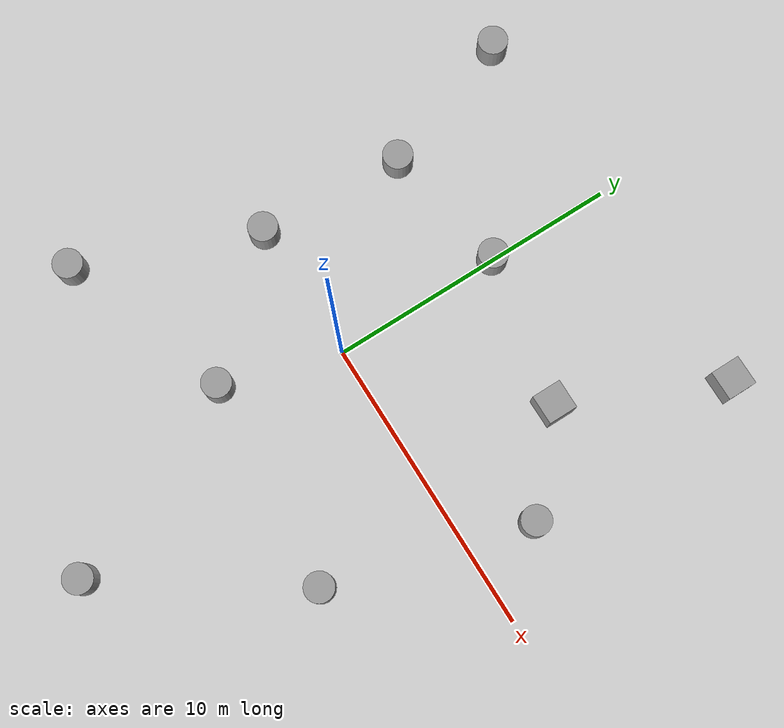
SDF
<sdf version="1.7">
 <world name="default">
  <light name="sun" type="directional">
   <pose>0 0 10 0 -0 0</pose>
   <diffuse>0.8 0.8 0.8 1</diffuse>
   <specular>0.2 0.2 0.2 1</specular>
   <attenuation>
    <range>1000</range>
    <constant>0.9</constant>
    <linear>0.01</linear>
    <quadratic>0.001</quadratic>
   </attenuation>
   <direction>-0.5 0.1 -0.9</direction>
   <spot><inner_angle>0</inner_angle><outer_angle>0</outer_angle><falloff>0</falloff></spot>
  </light>
  <model name="ground_plane">
   <static>1</static>
   <link name="link">
    <collision name="collision">
     <geometry><plane><normal>0 0 1</normal><size>100 100</size></plane></geometry>
     <surface><friction><ode><mu>100</mu><mu2>50</mu2></ode></friction></surface>
    </collision>
    <visual name="visual">
     <cast_shadows>0</cast_shadows>
     <geometry><plane><normal>0 0 1</normal><size>100 100</size></plane></geometry>
     <material>
      <script><uri>file://media/materials/scripts/gazebo.material</uri><name>Gazebo/Grey</name></script>
     </material>
    </visual>
   </link>
  </model>
  <gravity>0 0 -9.8</gravity>
  <magnetic_field>6e-06 2.3e-05 -4.2e-05</magnetic_field>
  <atmosphere type="adiabatic"/>
  <physics type="ode">
   <max_step_size>0.001</max_step_size>
   <real_time_factor>1</real_time_factor>
   <real_time_update_rate>1000</real_time_update_rate>
  </physics>
  <scene><ambient>0.4 0.4 0.4 1</ambient><background>0.7 0.7 0.7 1</background><shadows>1</shadows></scene>
  <audio><device>default</device></audio>
  <spherical_coordinates>
   <surface_model>EARTH_WGS84</surface_model>
   <latitude_deg>0</latitude_deg>
   <longitude_deg>0</longitude_deg>
   <elevation>0</elevation>
   <heading_deg>0</heading_deg>
  </spherical_coordinates>
  <model name="unit_cylinder">
   <pose>-4.69618 -0.046519 0.499992 -3e-06 3e-06 0</pose>
   <link name="link">
    <inertial>
     <mass>1</mass>
     <inertia><ixx>0.145833</ixx><ixy>0</ixy><ixz>0</ixz><iyy>0.145833</iyy><iyz>0</iyz><izz>0.125</izz></inertia>
    </inertial>
    <collision name="collision">
     <geometry><cylinder><radius>0.5</radius><length>1</length></cylinder></geometry>
    </collision>
    <visual name="visual">
     <geometry><cylinder><radius>0.5</radius><length>1</length></cylinder></geometry>
     <material>
      <script><name>Gazebo/Grey</name><uri>file://media/materials/scripts/gazebo.material</uri></script>
     </material>
    </visual>
   </link>
  </model>
  <model name="unit_box">
   <pose>5.02849 4.73238 0.499995 -1e-05 -0 -0</pose>
   <link name="link">
    <inertial>
     <mass>1</mass>
     <inertia>
      <ixx>0.166667</ixx>
      <ixy>0</ixy>
      <ixz>0</ixz>
      <iyy>0.166667</iyy>
      <iyz>0</iyz>
      <izz>0.166667</izz>
     </inertia>
    </inertial>
    <collision name="collision"><geometry><box><size>1 1 1</size></box></geometry></collision>
    <visual name="visual">
     <geometry><box><size>1 1 1</size></box></geometry>
     <material>
      <script><name>Gazebo/Grey</name><uri>file://media/materials/scripts/gazebo.material</uri></script>
     </material>
    </visual>
   </link>
  </model>
  <model name="unit_cylinder_0">
   <pose>5.96148 -4.48335 0.499998 3e-06 -4e-06 0</pose>
   <link name="link">
    <inertial>
     <mass>1</mass>
     <inertia><ixx>0.145833</ixx><ixy>0</ixy><ixz>0</ixz><iyy>0.145833</iyy><iyz>0</iyz><izz>0.125</izz></inertia>
    </inertial>
    <collision name="collision">
     <geometry><cylinder><radius>0.5</radius><length>1</length></cylinder></geometry>
    </collision>
    <visual name="visual">
     <geometry><cylinder><radius>0.5</radius><length>1</length></cylinder></geometry>
     <material>
      <script><name>Gazebo/Grey</name><uri>file://media/materials/scripts/gazebo.material</uri></script>
     </material>
    </visual>
   </link>
  </model>
  <model name="unit_cylinder_1">
   <pose>-1.13265 -3.90047 0.499998 3e-06 -4e-06 0</pose>
   <link name="link">
    <inertial>
     <mass>1</mass>
     <inertia><ixx>0.145833</ixx><ixy>0</ixy><ixz>0</ixz><iyy>0.145833</iyy><iyz>0</iyz><izz>0.125</izz></inertia>
    </inertial>
    <collision name="collision">
     <geometry><cylinder><radius>0.5</radius><length>1</length></cylinder></geometry>
    </collision>
    <visual name="visual">
     <geometry><cylinder><radius>0.5</radius><length>1</length></cylinder></geometry>
     <material>
      <script><name>Gazebo/Grey</name><uri>file://media/materials/scripts/gazebo.material</uri></script>
     </material>
    </visual>
   </link>
  </model>
  <model name="unit_cylinder_1_clone">
   <pose>-0.023631 5.72765 0.499992 -3e-06 4e-06 0</pose>
   <link name="link">
    <inertial>
     <mass>1</mass>
     <inertia><ixx>0.145833</ixx><ixy>0</ixy><ixz>0</ixz><iyy>0.145833</iyy><iyz>0</iyz><izz>0.125</izz></inertia>
    </inertial>
    <collision name="collision">
     <geometry><cylinder><radius>0.5</radius><length>1</length></cylinder></geometry>
    </collision>
    <visual name="visual">
     <geometry><cylinder><radius>0.5</radius><length>1</length></cylinder></geometry>
     <material>
      <script><name>Gazebo/Grey</name><uri>file://media/materials/scripts/gazebo.material</uri></script>
     </material>
    </visual>
   </link>
  </model>
  <model name="unit_cylinder_1_clone_0">
   <pose>-6.97517 -5.93752 0.499998 3e-06 -4e-06 0</pose>
   <link name="link">
    <inertial>
     <mass>1</mass>
     <inertia><ixx>0.145833</ixx><ixy>0</ixy><ixz>0</ixz><iyy>0.145833</iyy><iyz>0</iyz><izz>0.125</izz></inertia>
    </inertial>
    <collision name="collision">
     <geometry><cylinder><radius>0.5</radius><length>1</length></cylinder></geometry>
    </collision>
    <visual name="visual">
     <geometry><cylinder><radius>0.5</radius><length>1</length></cylinder></geometry>
     <material>
      <script><name>Gazebo/Grey</name><uri>file://media/materials/scripts/gazebo.material</uri></script>
     </material>
    </visual>
   </link>
  </model>
  <model name="unit_cylinder_1_clone_1">
   <pose>-4.43425 4.90233 0.499992 -3e-06 4e-06 0</pose>
   <link name="link">
    <inertial>
     <mass>1</mass>
     <inertia><ixx>0.145833</ixx><ixy>0</ixy><ixz>0</ixz><iyy>0.145833</iyy><iyz>0</iyz><izz>0.125</izz></inertia>
    </inertial>
    <collision name="collision">
     <geometry><cylinder><radius>0.5</radius><length>1</length></cylinder></geometry>
    </collision>
    <visual name="visual">
     <geometry><cylinder><radius>0.5</radius><length>1</length></cylinder></geometry>
     <material>
      <script><name>Gazebo/Grey</name><uri>file://media/materials/scripts/gazebo.material</uri></script>
     </material>
    </visual>
   </link>
  </model>
  <model name="unit_cylinder_1_clone_2">
   <pose>7.80488 2.23172 0.499998 3e-06 4e-06 -0</pose>
   <link name="link">
    <inertial>
     <mass>1</mass>
     <inertia><ixx>0.145833</ixx><ixy>0</ixy><ixz>0</ixz><iyy>0.145833</iyy><iyz>0</iyz><izz>0.125</izz></inertia>
    </inertial>
    <collision name="collision">
     <geometry><cylinder><radius>0.5</radius><length>1</length></cylinder></geometry>
    </collision>
    <visual name="visual">
     <geometry><cylinder><radius>0.5</radius><length>1</length></cylinder></geometry>
     <material>
      <script><name>Gazebo/Grey</name><uri>file://media/materials/scripts/gazebo.material</uri></script>
     </material>
    </visual>
   </link>
  </model>
  <model name="unit_box_0">
   <pose>7.38448 9.89756 0.499995 0 1e-05 0</pose>
   <link name="link">
    <inertial>
     <mass>1</mass>
     <inertia>
      <ixx>0.166667</ixx>
      <ixy>0</ixy>
      <ixz>0</ixz>
      <iyy>0.166667</iyy>
      <iyz>0</iyz>
      <izz>0.166667</izz>
     </inertia>
    </inertial>
    <collision name="collision"><geometry><box><size>1 1 1</size></box></geometry></collision>
    <visual name="visual">
     <geometry><box><size>1 1 1</size></box></geometry>
     <material>
      <script><name>Gazebo/Grey</name><uri>file://media/materials/scripts/gazebo.material</uri></script>
     </material>
    </visual>
   </link>
  </model>
  <model name="unit_cylinder_1_clone_3">
   <pose>-6.0981 9.6513 0.499993 -3e-06 -4e-06 -0</pose>
   <link name="link">
    <inertial>
     <mass>1</mass>
     <inertia><ixx>0.145833</ixx><ixy>0</ixy><ixz>0</ixz><iyy>0.145833</iyy><iyz>0</iyz><izz>0.125</izz></inertia>
    </inertial>
    <collision name="collision">
     <geometry><cylinder><radius>0.5</radius><length>1</length></cylinder></geometry>
    </collision>
    <visual name="visual">
     <geometry><cylinder><radius>0.5</radius><length>1</length></cylinder></geometry>
     <material>
      <script><name>Gazebo/Grey</name><uri>file://media/materials/scripts/gazebo.material</uri></script>
     </material>
    </visual>
   </link>
  </model>
  <model name="unit_cylinder_1_clone_4">
   <pose>1.81642 -10.5735 0.499997 3e-06 4e-06 -0</pose>
   <link name="link">
    <inertial>
     <mass>1</mass>
     <inertia><ixx>0.145833</ixx><ixy>0</ixy><ixz>0</ixz><iyy>0.145833</iyy><iyz>0</iyz><izz>0.125</izz></inertia>
    </inertial>
    <collision name="collision">
     <geometry><cylinder><radius>0.5</radius><length>1</length></cylinder></geometry>
    </collision>
    <visual name="visual">
     <geometry><cylinder><radius>0.5</radius><length>1</length></cylinder></geometry>
     <material>
      <script><name>Gazebo/Grey</name><uri>file://media/materials/scripts/gazebo.material</uri></script>
     </material>
    </visual>
   </link>
  </model>
 </world>
</sdf>
